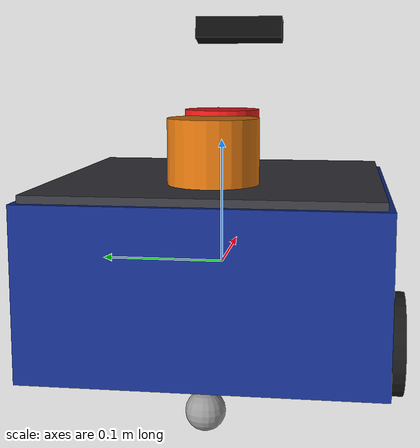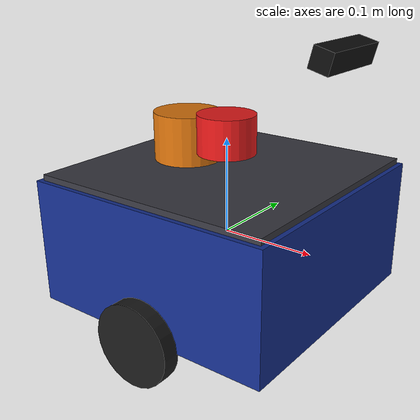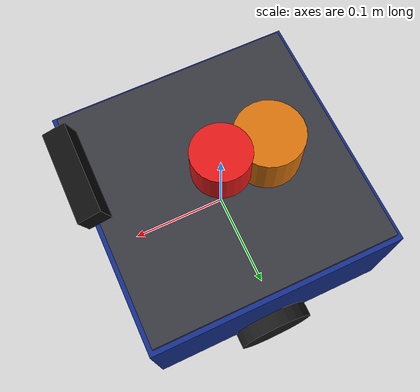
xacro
<?xml version="1.0"?>
<robot name="amr_robot" xmlns:xacro="http://www.ros.org/wiki/xacro">

  <xacro:property name="base_l"     value="0.265"/>
  <xacro:property name="base_w"     value="0.265"/>
  <xacro:property name="base_h"     value="0.130"/>
  <xacro:property name="base_mass"  value="10.0"/>
  <xacro:property name="wheel_r"    value="0.0425"/>
  <xacro:property name="wheel_t"    value="0.018"/>
  <xacro:property name="wheel_mass" value="0.5"/>
  <xacro:property name="wheel_sep"  value="0.28"/>
  <xacro:property name="caster_r"   value="0.015"/>

  <link name="base_link">
    <visual>
      <origin xyz="0 0 0" rpy="0 0 0"/>
      <geometry>
        <box size="${base_l} ${base_w} ${base_h}"/>
      </geometry>
      <material name="dark_blue">
        <color rgba="0.08 0.18 0.55 1.0"/>
      </material>
    </visual>
    <collision>
      <origin xyz="0 0 0" rpy="0 0 0"/>
      <geometry>
        <box size="${base_l} ${base_w} ${base_h}"/>
      </geometry>
    </collision>
    <inertial>
      <origin xyz="0 0 0" rpy="0 0 0"/>
      <mass value="${base_mass}"/>
      <inertia
        ixx="${base_mass*(base_w*base_w+base_h*base_h)/12}"
        ixy="0" ixz="0"
        iyy="${base_mass*(base_l*base_l+base_h*base_h)/12}"
        iyz="0"
        izz="${base_mass*(base_l*base_l+base_w*base_w)/12}"/>
    </inertial>
  </link>

  <link name="top_deck">
    <visual>
      <geometry>
        <box size="${base_l-0.01} ${base_w-0.01} 0.006"/>
      </geometry>
      <material name="charcoal">
        <color rgba="0.22 0.22 0.25 1.0"/>
      </material>
    </visual>
    <collision>
      <geometry>
        <box size="${base_l-0.01} ${base_w-0.01} 0.006"/>
      </geometry>
    </collision>
    <inertial>
      <mass value="0.3"/>
      <inertia ixx="0.001" ixy="0" ixz="0"
               iyy="0.001" iyz="0" izz="0.001"/>
    </inertial>
  </link>

  <joint name="top_deck_joint" type="fixed">
    <parent link="base_link"/>
    <child  link="top_deck"/>
    <origin xyz="0 0 ${base_h/2+0.003}" rpy="0 0 0"/>
  </joint>

  <link name="arm_mount">
    <visual>
      <geometry>
        <cylinder radius="0.035" length="0.05"/>
      </geometry>
      <material name="orange">
        <color rgba="0.85 0.45 0.05 1.0"/>
      </material>
    </visual>
    <collision>
      <geometry>
        <cylinder radius="0.035" length="0.05"/>
      </geometry>
    </collision>
    <inertial>
      <mass value="0.2"/>
      <inertia ixx="0.001" ixy="0" ixz="0"
               iyy="0.001" iyz="0" izz="0.001"/>
    </inertial>
  </link>

  <joint name="arm_mount_joint" type="fixed">
    <parent link="top_deck"/>
    <child  link="arm_mount"/>
    <origin xyz="-0.05 0 0.028" rpy="0 0 0"/>
  </joint>

  <link name="left_wheel">
    <visual>
      <geometry>
        <cylinder radius="${wheel_r}" length="${wheel_t}"/>
      </geometry>
      <material name="tire_black">
        <color rgba="0.1 0.1 0.1 1.0"/>
      </material>
    </visual>
    <collision>
      <geometry>
        <cylinder radius="${wheel_r}" length="${wheel_t}"/>
      </geometry>
    </collision>
    <inertial>
      <mass value="${wheel_mass}"/>
      <inertia
        ixx="${wheel_mass*(3*wheel_r*wheel_r+wheel_t*wheel_t)/12}"
        ixy="0" ixz="0"
        iyy="${wheel_mass*(3*wheel_r*wheel_r+wheel_t*wheel_t)/12}"
        iyz="0"
        izz="${wheel_mass*wheel_r*wheel_r/2}"/>
    </inertial>
  </link>

<joint name="left_wheel_joint" type="continuous">
    <parent link="base_link"/>
    <child link="left_wheel"/>
    <origin xyz="0 ${wheel_sep/2} ${-base_h/2}" rpy="${pi/2} 0 0"/>
    <axis xyz="0 0 -1"/>
    <dynamics damping="0.1" friction="0.1"/>
  </joint>

  <link name="right_wheel">
    <visual>
      <geometry>
        <cylinder radius="${wheel_r}" length="${wheel_t}"/>
      </geometry>
      <material name="tire_black">
        <color rgba="0.1 0.1 0.1 1.0"/>
      </material>
    </visual>
    <collision>
      <geometry>
        <cylinder radius="${wheel_r}" length="${wheel_t}"/>
      </geometry>
    </collision>
    <inertial>
      <mass value="${wheel_mass}"/>
      <inertia
        ixx="${wheel_mass*(3*wheel_r*wheel_r+wheel_t*wheel_t)/12}"
        ixy="0" ixz="0"
        iyy="${wheel_mass*(3*wheel_r*wheel_r+wheel_t*wheel_t)/12}"
        iyz="0"
        izz="${wheel_mass*wheel_r*wheel_r/2}"/>
    </inertial>
  </link>

<joint name="right_wheel_joint" type="continuous">
    <parent link="base_link"/>
    <child link="right_wheel"/>
    <origin xyz="0 ${-wheel_sep/2} ${-base_h/2}" rpy="${pi/2} 0 0"/>
    <axis xyz="0 0 -1"/>
    <dynamics damping="0.1" friction="0.1"/>
  </joint>

  <!-- REAR CASTER -->
  <link name="rear_caster_wheel">
    <visual>
      <geometry><sphere radius="${caster_r}"/></geometry>
      <material name="light_gray">
        <color rgba="0.6 0.6 0.6 1.0"/>
      </material>
    </visual>
    <collision>
      <geometry><sphere radius="${caster_r}"/></geometry>
    </collision>
    <inertial>
      <mass value="0.05"/>
      <inertia
        ixx="0.000025" ixy="0" ixz="0"
        iyy="0.000025" iyz="0"
        izz="0.000025"/>
    </inertial>
  </link>

  <joint name="rear_caster_joint" type="fixed">
    <parent link="base_link"/>
    <child  link="rear_caster_wheel"/>
    <origin xyz="${-(base_l/2-0.04)} 0 ${-base_h/2 - wheel_r + caster_r}" rpy="0 0 0"/>
  </joint>

  <!-- FRONT CASTER -->
  <link name="front_caster_wheel">
    <visual>
      <geometry><sphere radius="${caster_r}"/></geometry>
      <material name="light_gray">
        <color rgba="0.6 0.6 0.6 1.0"/>
      </material>
    </visual>
    <collision>
      <geometry><sphere radius="${caster_r}"/></geometry>
    </collision>
    <inertial>
      <mass value="0.05"/>
      <inertia
        ixx="0.000025" ixy="0" ixz="0"
        iyy="0.000025" iyz="0"
        izz="0.000025"/>
    </inertial>
  </link>

  <joint name="front_caster_joint" type="fixed">
    <parent link="base_link"/>
    <child  link="front_caster_wheel"/>
    <origin xyz="${(base_l/2-0.04)} 0 ${-base_h/2 - wheel_r + caster_r}" rpy="0 0 0"/>
  </joint>

  <link name="lidar_link">
    <visual>
      <geometry>
        <cylinder radius="0.03" length="0.04"/>
      </geometry>
      <material name="scan_red">
        <color rgba="0.9 0.1 0.1 1.0"/>
      </material>
    </visual>
    <collision>
      <geometry>
        <cylinder radius="0.03" length="0.04"/>
      </geometry>
    </collision>
    <inertial>
      <mass value="0.1"/>
      <inertia ixx="0.0001" ixy="0" ixz="0"
               iyy="0.0001" iyz="0" izz="0.0001"/>
    </inertial>
  </link>

  <joint name="lidar_joint" type="fixed">
    <parent link="base_link"/>
    <child  link="lidar_link"/>
    <origin xyz="0.0 0.0 ${base_h/2+0.04}" rpy="0 0 0"/>
  </joint>

  <link name="imu_link">
    <inertial>
      <mass value="0.01"/>
      <inertia ixx="0.00001" ixy="0" ixz="0"
               iyy="0.00001" iyz="0" izz="0.00001"/>
    </inertial>
  </link>

  <joint name="imu_joint" type="fixed">
    <parent link="base_link"/>
    <child  link="imu_link"/>
    <origin xyz="0 0 0" rpy="0 0 0"/>
  </joint>

  <link name="camera_link">
    <visual>
      <geometry><box size="0.02 0.08 0.02"/></geometry>
      <material name="cam_black">
        <color rgba="0.05 0.05 0.05 1.0"/>
      </material>
    </visual>
    <collision>
      <geometry><box size="0.02 0.08 0.02"/></geometry>
    </collision>
    <inertial>
      <mass value="0.1"/>
      <inertia ixx="0.0001" ixy="0" ixz="0"
               iyy="0.0001" iyz="0" izz="0.0001"/>
    </inertial>
  </link>

  <link name="camera_optical_frame"/>

  <joint name="camera_joint" type="fixed">
    <parent link="base_link"/>
    <child  link="camera_link"/>
    <origin xyz="${base_l/2-0.01} 0 0.1925" rpy="0 0.2618 0"/>
  </joint>

  <joint name="camera_optical_joint" type="fixed">
    <parent link="camera_link"/>
    <child  link="camera_optical_frame"/>
    <origin xyz="0 0 0" rpy="${-pi/2} 0 ${-pi/2}"/>
  </joint>

  <gazebo reference="camera_link">
    <sensor name="camera" type="camera">
      <always_on>true</always_on>
      <visualize>true</visualize>
      <update_rate>30</update_rate>
      <topic>/camera/image_raw</topic>
      <gz_frame_id>camera_optical_frame</gz_frame_id>
      <camera>
        <horizontal_fov>1.047</horizontal_fov>
        <image>
          <width>640</width>
          <height>480</height>
          <format>R8G8B8</format>
        </image>
        <clip>
          <near>0.1</near>
          <far>10.0</far>
        </clip>
      </camera>
    </sensor>
  </gazebo>

  <gazebo reference="rear_caster_wheel">
    <mu1>0.0</mu1>
    <mu2>0.0</mu2>
    <kp>1000000.0</kp>
    <kd>100.0</kd>
  </gazebo>

  <gazebo reference="front_caster_wheel">
    <mu1>0.0</mu1>
    <mu2>0.0</mu2>
    <kp>1000000.0</kp>
    <kd>100.0</kd>
  </gazebo>

  <gazebo reference="left_wheel">
    <mu1>1.0</mu1>
    <mu2>1.0</mu2>
    <kp>1000000.0</kp>
    <kd>100.0</kd>
  </gazebo>

  <gazebo reference="right_wheel">
    <mu1>1.0</mu1>
    <mu2>1.0</mu2>
    <kp>1000000.0</kp>
    <kd>100.0</kd>
  </gazebo>

  <gazebo reference="lidar_link">
    <sensor name="lidar" type="gpu_lidar">
      <always_on>true</always_on>
      <visualize>true</visualize>
      <update_rate>10</update_rate>
      <topic>/scan</topic>
      <gz_frame_id>lidar_link</gz_frame_id>
      <lidar>
        <scan>
          <horizontal>
            <samples>360</samples>
            <resolution>1</resolution>
            <min_angle>-3.14159</min_angle>
            <max_angle>3.14159</max_angle>
          </horizontal>
        </scan>
        <range>
          <min>0.12</min>
          <max>12.0</max>
          <resolution>0.01</resolution>
        </range>
        <noise>
          <type>gaussian</type>
          <mean>0.0</mean>
          <stddev>0.001</stddev>
        </noise>
      </lidar>
    </sensor>
  </gazebo>

<gazebo>
  <plugin filename="gz-sim-diff-drive-system"
          name="gz::sim::systems::DiffDrive">

    <left_joint>left_wheel_joint</left_joint>
    <right_joint>right_wheel_joint</right_joint>

    <wheel_separation>${wheel_sep}</wheel_separation>
    <wheel_radius>${wheel_r}</wheel_radius>

    <topic>/cmd_vel</topic>

    <odom_topic>odom</odom_topic>
    <tf_topic>/tf</tf_topic>

    <frame_id>odom</frame_id>
    <child_frame_id>base_footprint</child_frame_id>

    <odom_publish_frequency>30</odom_publish_frequency>

    <max_linear_velocity>1.0</max_linear_velocity>
    <max_angular_velocity>1.5</max_angular_velocity>
    <max_linear_acceleration>1.0</max_linear_acceleration>
    <max_angular_acceleration>1.5</max_angular_acceleration>

  </plugin>

  <plugin filename="gz-sim-joint-state-publisher-system"
          name="gz::sim::systems::JointStatePublisher">
    <topic>joint_states</topic>
    <joint_name>left_wheel_joint</joint_name>
    <joint_name>right_wheel_joint</joint_name>
  </plugin>

  <plugin filename="gz-sim-pose-publisher-system"
          name="gz::sim::systems::PosePublisher">
    <publish_link_pose>false</publish_link_pose>
    <publish_collision_pose>false</publish_collision_pose>
    <publish_visual_pose>false</publish_visual_pose>
    <publish_nested_model_pose>false</publish_nested_model_pose>
    <publish_model_pose>true</publish_model_pose>
    <use_pose_vector_msg>false</use_pose_vector_msg>
    <update_rate>50.0</update_rate>
  </plugin>
</gazebo>

</robot>
